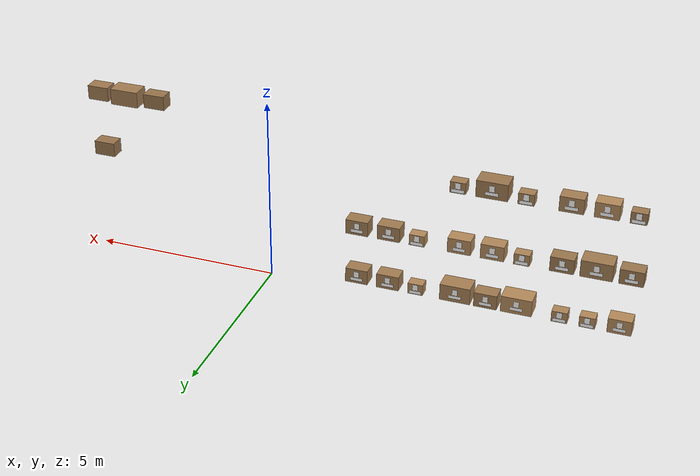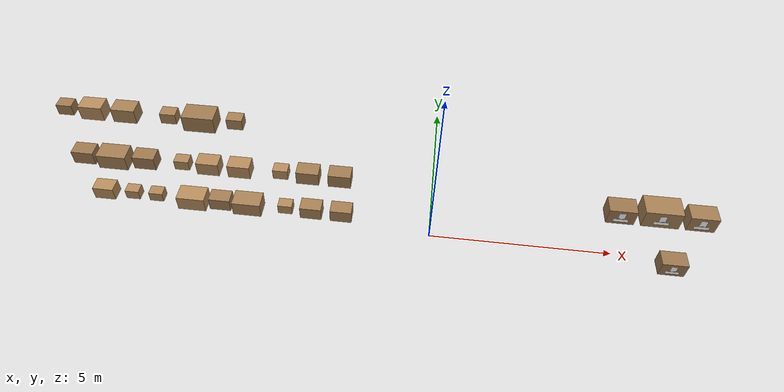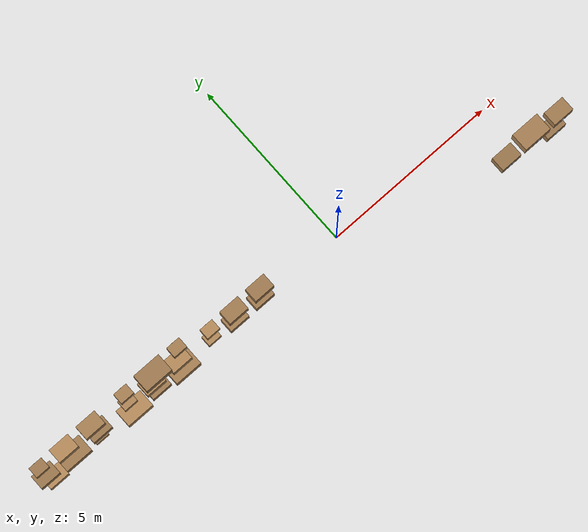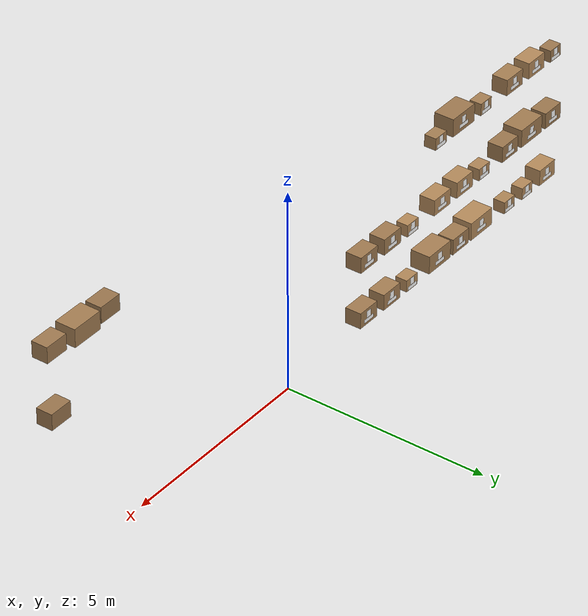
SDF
<sdf version="1.9">
 <world name="warehouse">
  <model name="inventory">
   <static>true</static>
   <link name="box_B_06_2_2">
    <visual name="body">
     <pose>5.65 -1.68 2.05 0 0 0</pose>
     <geometry><box><size>0.6 0.4 0.4</size></box></geometry>
     <material>
      <ambient>0.303546 0.232123 0.151773 1</ambient>
      <diffuse>0.607091 0.464246 0.303546 1</diffuse>
      <specular>0.05 0.05 0.05 1</specular>
      <pbr><metal><metalness>0.0</metalness><roughness>0.9</roughness></metal></pbr>
     </material>
    </visual>
    <collision name="body_c">
     <pose>5.65 -1.68 2.05 0 0 0</pose>
     <geometry><box><size>0.6 0.4 0.4</size></box></geometry>
    </collision>
    <visual name="label">
     <pose>5.65 -1.884 2.1 1.5708 0 0</pose>
     <geometry>
      <mesh><uri>model://warehouse_assets/meshes/label_quad.obj</uri><scale>0.14 0.17 1</scale></mesh>
     </geometry>
     <material>
      <ambient>1 1 1 1</ambient>
      <diffuse>1 1 1 1</diffuse>
      <specular>0 0 0 1</specular>
      <pbr>
       <metal>
        <albedo_map>model://warehouse_assets/materials/textures/box_B0622.png</albedo_map>
        <metalness>0.0</metalness>
        <roughness>1.0</roughness>
       </metal>
      </pbr>
     </material>
    </visual>
    <visual name="placard">
     <pose>5.65 -1.884 1.96 1.5708 0 0</pose>
     <geometry>
      <mesh><uri>model://warehouse_assets/meshes/label_quad.obj</uri><scale>0.32 0.09 1</scale></mesh>
     </geometry>
     <material>
      <ambient>1 1 1 1</ambient>
      <diffuse>1 1 1 1</diffuse>
      <specular>0 0 0 1</specular>
      <pbr>
       <metal>
        <albedo_map>model://warehouse_assets/materials/textures/placard_B0622.png</albedo_map>
        <metalness>0.0</metalness>
        <roughness>1.0</roughness>
       </metal>
      </pbr>
     </material>
    </visual>
   </link>
   <link name="box_B_06_3_0">
    <visual name="body">
     <pose>4 -1.68 3.75 0 0 0</pose>
     <geometry><box><size>0.6 0.4 0.4</size></box></geometry>
     <material>
      <ambient>0.302168 0.231069 0.151084 1</ambient>
      <diffuse>0.604336 0.462139 0.302168 1</diffuse>
      <specular>0.05 0.05 0.05 1</specular>
      <pbr><metal><metalness>0.0</metalness><roughness>0.9</roughness></metal></pbr>
     </material>
    </visual>
    <collision name="body_c">
     <pose>4 -1.68 3.75 0 0 0</pose>
     <geometry><box><size>0.6 0.4 0.4</size></box></geometry>
    </collision>
    <visual name="label">
     <pose>4 -1.884 3.8 1.5708 0 0</pose>
     <geometry>
      <mesh><uri>model://warehouse_assets/meshes/label_quad.obj</uri><scale>0.14 0.17 1</scale></mesh>
     </geometry>
     <material>
      <ambient>1 1 1 1</ambient>
      <diffuse>1 1 1 1</diffuse>
      <specular>0 0 0 1</specular>
      <pbr>
       <metal>
        <albedo_map>model://warehouse_assets/materials/textures/box_B0630.png</albedo_map>
        <metalness>0.0</metalness>
        <roughness>1.0</roughness>
       </metal>
      </pbr>
     </material>
    </visual>
    <visual name="placard">
     <pose>4 -1.884 3.66 1.5708 0 0</pose>
     <geometry>
      <mesh><uri>model://warehouse_assets/meshes/label_quad.obj</uri><scale>0.32 0.09 1</scale></mesh>
     </geometry>
     <material>
      <ambient>1 1 1 1</ambient>
      <diffuse>1 1 1 1</diffuse>
      <specular>0 0 0 1</specular>
      <pbr>
       <metal>
        <albedo_map>model://warehouse_assets/materials/textures/placard_B0630.png</albedo_map>
        <metalness>0.0</metalness>
        <roughness>1.0</roughness>
       </metal>
      </pbr>
     </material>
    </visual>
   </link>
   <link name="box_B_06_3_1">
    <visual name="body">
     <pose>4.85 -1.63 3.775 0 0 0</pose>
     <geometry><box><size>0.8 0.5 0.45</size></box></geometry>
     <material>
      <ambient>0.324613 0.248233 0.162306 1</ambient>
      <diffuse>0.649225 0.496466 0.324613 1</diffuse>
      <specular>0.05 0.05 0.05 1</specular>
      <pbr><metal><metalness>0.0</metalness><roughness>0.9</roughness></metal></pbr>
     </material>
    </visual>
    <collision name="body_c">
     <pose>4.85 -1.63 3.775 0 0 0</pose>
     <geometry><box><size>0.8 0.5 0.45</size></box></geometry>
    </collision>
    <visual name="label">
     <pose>4.85 -1.884 3.825 1.5708 0 0</pose>
     <geometry>
      <mesh><uri>model://warehouse_assets/meshes/label_quad.obj</uri><scale>0.14 0.17 1</scale></mesh>
     </geometry>
     <material>
      <ambient>1 1 1 1</ambient>
      <diffuse>1 1 1 1</diffuse>
      <specular>0 0 0 1</specular>
      <pbr>
       <metal>
        <albedo_map>model://warehouse_assets/materials/textures/box_B0631.png</albedo_map>
        <metalness>0.0</metalness>
        <roughness>1.0</roughness>
       </metal>
      </pbr>
     </material>
    </visual>
    <visual name="placard">
     <pose>4.85 -1.884 3.685 1.5708 0 0</pose>
     <geometry>
      <mesh><uri>model://warehouse_assets/meshes/label_quad.obj</uri><scale>0.32 0.09 1</scale></mesh>
     </geometry>
     <material>
      <ambient>1 1 1 1</ambient>
      <diffuse>1 1 1 1</diffuse>
      <specular>0 0 0 1</specular>
      <pbr>
       <metal>
        <albedo_map>model://warehouse_assets/materials/textures/placard_B0631.png</albedo_map>
        <metalness>0.0</metalness>
        <roughness>1.0</roughness>
       </metal>
      </pbr>
     </material>
    </visual>
   </link>
   <link name="box_B_06_3_2">
    <visual name="body">
     <pose>5.7 -1.68 3.75 0 0 0</pose>
     <geometry><box><size>0.6 0.4 0.4</size></box></geometry>
     <material>
      <ambient>0.315795 0.24149 0.157897 1</ambient>
      <diffuse>0.631589 0.48298 0.315795 1</diffuse>
      <specular>0.05 0.05 0.05 1</specular>
      <pbr><metal><metalness>0.0</metalness><roughness>0.9</roughness></metal></pbr>
     </material>
    </visual>
    <collision name="body_c">
     <pose>5.7 -1.68 3.75 0 0 0</pose>
     <geometry><box><size>0.6 0.4 0.4</size></box></geometry>
    </collision>
    <visual name="label">
     <pose>5.7 -1.884 3.8 1.5708 0 0</pose>
     <geometry>
      <mesh><uri>model://warehouse_assets/meshes/label_quad.obj</uri><scale>0.14 0.17 1</scale></mesh>
     </geometry>
     <material>
      <ambient>1 1 1 1</ambient>
      <diffuse>1 1 1 1</diffuse>
      <specular>0 0 0 1</specular>
      <pbr>
       <metal>
        <albedo_map>model://warehouse_assets/materials/textures/box_B0632.png</albedo_map>
        <metalness>0.0</metalness>
        <roughness>1.0</roughness>
       </metal>
      </pbr>
     </material>
    </visual>
    <visual name="placard">
     <pose>5.7 -1.884 3.66 1.5708 0 0</pose>
     <geometry>
      <mesh><uri>model://warehouse_assets/meshes/label_quad.obj</uri><scale>0.32 0.09 1</scale></mesh>
     </geometry>
     <material>
      <ambient>1 1 1 1</ambient>
      <diffuse>1 1 1 1</diffuse>
      <specular>0 0 0 1</specular>
      <pbr>
       <metal>
        <albedo_map>model://warehouse_assets/materials/textures/placard_B0632.png</albedo_map>
        <metalness>0.0</metalness>
        <roughness>1.0</roughness>
       </metal>
      </pbr>
     </material>
    </visual>
   </link>
   <link name="box_C_01_1_0">
    <visual name="body">
     <pose>-9.35 0.08 0.6 0 0 0</pose>
     <geometry><box><size>0.6 0.4 0.4</size></box></geometry>
     <material>
      <ambient>0.359424 0.274853 0.179712 1</ambient>
      <diffuse>0.718847 0.549707 0.359424 1</diffuse>
      <specular>0.05 0.05 0.05 1</specular>
      <pbr><metal><metalness>0.0</metalness><roughness>0.9</roughness></metal></pbr>
     </material>
    </visual>
    <collision name="body_c">
     <pose>-9.35 0.08 0.6 0 0 0</pose>
     <geometry><box><size>0.6 0.4 0.4</size></box></geometry>
    </collision>
    <visual name="label">
     <pose>-9.35 0.284 0.65 1.5708 0 3.14159</pose>
     <geometry>
      <mesh><uri>model://warehouse_assets/meshes/label_quad.obj</uri><scale>0.14 0.17 1</scale></mesh>
     </geometry>
     <material>
      <ambient>1 1 1 1</ambient>
      <diffuse>1 1 1 1</diffuse>
      <specular>0 0 0 1</specular>
      <pbr>
       <metal>
        <albedo_map>model://warehouse_assets/materials/textures/box_C0110.png</albedo_map>
        <metalness>0.0</metalness>
        <roughness>1.0</roughness>
       </metal>
      </pbr>
     </material>
    </visual>
    <visual name="placard">
     <pose>-9.35 0.284 0.51 1.5708 0 3.14159</pose>
     <geometry>
      <mesh><uri>model://warehouse_assets/meshes/label_quad.obj</uri><scale>0.32 0.09 1</scale></mesh>
     </geometry>
     <material>
      <ambient>1 1 1 1</ambient>
      <diffuse>1 1 1 1</diffuse>
      <specular>0 0 0 1</specular>
      <pbr>
       <metal>
        <albedo_map>model://warehouse_assets/materials/textures/placard_C0110.png</albedo_map>
        <metalness>0.0</metalness>
        <roughness>1.0</roughness>
       </metal>
      </pbr>
     </material>
    </visual>
   </link>
   <link name="box_C_01_1_1">
    <visual name="body">
     <pose>-8.55 0.13 0.55 0 0 0</pose>
     <geometry><box><size>0.4 0.3 0.3</size></box></geometry>
     <material>
      <ambient>0.354381 0.270998 0.177191 1</ambient>
      <diffuse>0.708763 0.541995 0.354381 1</diffuse>
      <specular>0.05 0.05 0.05 1</specular>
      <pbr><metal><metalness>0.0</metalness><roughness>0.9</roughness></metal></pbr>
     </material>
    </visual>
    <collision name="body_c">
     <pose>-8.55 0.13 0.55 0 0 0</pose>
     <geometry><box><size>0.4 0.3 0.3</size></box></geometry>
    </collision>
    <visual name="label">
     <pose>-8.55 0.284 0.6 1.5708 0 3.14159</pose>
     <geometry>
      <mesh><uri>model://warehouse_assets/meshes/label_quad.obj</uri><scale>0.14 0.17 1</scale></mesh>
     </geometry>
     <material>
      <ambient>1 1 1 1</ambient>
      <diffuse>1 1 1 1</diffuse>
      <specular>0 0 0 1</specular>
      <pbr>
       <metal>
        <albedo_map>model://warehouse_assets/materials/textures/box_C0111.png</albedo_map>
        <metalness>0.0</metalness>
        <roughness>1.0</roughness>
       </metal>
      </pbr>
     </material>
    </visual>
    <visual name="placard">
     <pose>-8.55 0.284 0.46 1.5708 0 3.14159</pose>
     <geometry>
      <mesh><uri>model://warehouse_assets/meshes/label_quad.obj</uri><scale>0.32 0.09 1</scale></mesh>
     </geometry>
     <material>
      <ambient>1 1 1 1</ambient>
      <diffuse>1 1 1 1</diffuse>
      <specular>0 0 0 1</specular>
      <pbr>
       <metal>
        <albedo_map>model://warehouse_assets/materials/textures/placard_C0111.png</albedo_map>
        <metalness>0.0</metalness>
        <roughness>1.0</roughness>
       </metal>
      </pbr>
     </material>
    </visual>
   </link>
   <link name="box_C_01_1_2">
    <visual name="body">
     <pose>-7.85 0.13 0.55 0 0 0</pose>
     <geometry><box><size>0.4 0.3 0.3</size></box></geometry>
     <material>
      <ambient>0.343346 0.262559 0.171673 1</ambient>
      <diffuse>0.686692 0.525117 0.343346 1</diffuse>
      <specular>0.05 0.05 0.05 1</specular>
      <pbr><metal><metalness>0.0</metalness><roughness>0.9</roughness></metal></pbr>
     </material>
    </visual>
    <collision name="body_c">
     <pose>-7.85 0.13 0.55 0 0 0</pose>
     <geometry><box><size>0.4 0.3 0.3</size></box></geometry>
    </collision>
    <visual name="label">
     <pose>-7.85 0.284 0.6 1.5708 0 3.14159</pose>
     <geometry>
      <mesh><uri>model://warehouse_assets/meshes/label_quad.obj</uri><scale>0.14 0.17 1</scale></mesh>
     </geometry>
     <material>
      <ambient>1 1 1 1</ambient>
      <diffuse>1 1 1 1</diffuse>
      <specular>0 0 0 1</specular>
      <pbr>
       <metal>
        <albedo_map>model://warehouse_assets/materials/textures/box_C0112.png</albedo_map>
        <metalness>0.0</metalness>
        <roughness>1.0</roughness>
       </metal>
      </pbr>
     </material>
    </visual>
    <visual name="placard">
     <pose>-7.85 0.284 0.46 1.5708 0 3.14159</pose>
     <geometry>
      <mesh><uri>model://warehouse_assets/meshes/label_quad.obj</uri><scale>0.32 0.09 1</scale></mesh>
     </geometry>
     <material>
      <ambient>1 1 1 1</ambient>
      <diffuse>1 1 1 1</diffuse>
      <specular>0 0 0 1</specular>
      <pbr>
       <metal>
        <albedo_map>model://warehouse_assets/materials/textures/placard_C0112.png</albedo_map>
        <metalness>0.0</metalness>
        <roughness>1.0</roughness>
       </metal>
      </pbr>
     </material>
    </visual>
   </link>
   <link name="box_C_01_2_0">
    <visual name="body">
     <pose>-9.5 0.08 2.05 0 0 0</pose>
     <geometry><box><size>0.6 0.4 0.4</size></box></geometry>
     <material>
      <ambient>0.30741 0.235078 0.153705 1</ambient>
      <diffuse>0.61482 0.470157 0.30741 1</diffuse>
      <specular>0.05 0.05 0.05 1</specular>
      <pbr><metal><metalness>0.0</metalness><roughness>0.9</roughness></metal></pbr>
     </material>
    </visual>
    <collision name="body_c">
     <pose>-9.5 0.08 2.05 0 0 0</pose>
     <geometry><box><size>0.6 0.4 0.4</size></box></geometry>
    </collision>
    <visual name="label">
     <pose>-9.5 0.284 2.1 1.5708 0 3.14159</pose>
     <geometry>
      <mesh><uri>model://warehouse_assets/meshes/label_quad.obj</uri><scale>0.14 0.17 1</scale></mesh>
     </geometry>
     <material>
      <ambient>1 1 1 1</ambient>
      <diffuse>1 1 1 1</diffuse>
      <specular>0 0 0 1</specular>
      <pbr>
       <metal>
        <albedo_map>model://warehouse_assets/materials/textures/box_C0120.png</albedo_map>
        <metalness>0.0</metalness>
        <roughness>1.0</roughness>
       </metal>
      </pbr>
     </material>
    </visual>
    <visual name="placard">
     <pose>-9.5 0.284 1.96 1.5708 0 3.14159</pose>
     <geometry>
      <mesh><uri>model://warehouse_assets/meshes/label_quad.obj</uri><scale>0.32 0.09 1</scale></mesh>
     </geometry>
     <material>
      <ambient>1 1 1 1</ambient>
      <diffuse>1 1 1 1</diffuse>
      <specular>0 0 0 1</specular>
      <pbr>
       <metal>
        <albedo_map>model://warehouse_assets/materials/textures/placard_C0120.png</albedo_map>
        <metalness>0.0</metalness>
        <roughness>1.0</roughness>
       </metal>
      </pbr>
     </material>
    </visual>
   </link>
   <link name="box_C_01_2_1">
    <visual name="body">
     <pose>-8.65 0.03 2.075 0 0 0</pose>
     <geometry><box><size>0.8 0.5 0.45</size></box></geometry>
     <material>
      <ambient>0.319136 0.244045 0.159568 1</ambient>
      <diffuse>0.638272 0.48809 0.319136 1</diffuse>
      <specular>0.05 0.05 0.05 1</specular>
      <pbr><metal><metalness>0.0</metalness><roughness>0.9</roughness></metal></pbr>
     </material>
    </visual>
    <collision name="body_c">
     <pose>-8.65 0.03 2.075 0 0 0</pose>
     <geometry><box><size>0.8 0.5 0.45</size></box></geometry>
    </collision>
    <visual name="label">
     <pose>-8.65 0.284 2.125 1.5708 0 3.14159</pose>
     <geometry>
      <mesh><uri>model://warehouse_assets/meshes/label_quad.obj</uri><scale>0.14 0.17 1</scale></mesh>
     </geometry>
     <material>
      <ambient>1 1 1 1</ambient>
      <diffuse>1 1 1 1</diffuse>
      <specular>0 0 0 1</specular>
      <pbr>
       <metal>
        <albedo_map>model://warehouse_assets/materials/textures/box_C0121.png</albedo_map>
        <metalness>0.0</metalness>
        <roughness>1.0</roughness>
       </metal>
      </pbr>
     </material>
    </visual>
    <visual name="placard">
     <pose>-8.65 0.284 1.985 1.5708 0 3.14159</pose>
     <geometry>
      <mesh><uri>model://warehouse_assets/meshes/label_quad.obj</uri><scale>0.32 0.09 1</scale></mesh>
     </geometry>
     <material>
      <ambient>1 1 1 1</ambient>
      <diffuse>1 1 1 1</diffuse>
      <specular>0 0 0 1</specular>
      <pbr>
       <metal>
        <albedo_map>model://warehouse_assets/materials/textures/placard_C0121.png</albedo_map>
        <metalness>0.0</metalness>
        <roughness>1.0</roughness>
       </metal>
      </pbr>
     </material>
    </visual>
   </link>
   <link name="box_C_01_2_2">
    <visual name="body">
     <pose>-7.8 0.08 2.05 0 0 0</pose>
     <geometry><box><size>0.6 0.4 0.4</size></box></geometry>
     <material>
      <ambient>0.30686 0.234657 0.15343 1</ambient>
      <diffuse>0.613719 0.469315 0.30686 1</diffuse>
      <specular>0.05 0.05 0.05 1</specular>
      <pbr><metal><metalness>0.0</metalness><roughness>0.9</roughness></metal></pbr>
     </material>
    </visual>
    <collision name="body_c">
     <pose>-7.8 0.08 2.05 0 0 0</pose>
     <geometry><box><size>0.6 0.4 0.4</size></box></geometry>
    </collision>
    <visual name="label">
     <pose>-7.8 0.284 2.1 1.5708 0 3.14159</pose>
     <geometry>
      <mesh><uri>model://warehouse_assets/meshes/label_quad.obj</uri><scale>0.14 0.17 1</scale></mesh>
     </geometry>
     <material>
      <ambient>1 1 1 1</ambient>
      <diffuse>1 1 1 1</diffuse>
      <specular>0 0 0 1</specular>
      <pbr>
       <metal>
        <albedo_map>model://warehouse_assets/materials/textures/box_C0122.png</albedo_map>
        <metalness>0.0</metalness>
        <roughness>1.0</roughness>
       </metal>
      </pbr>
     </material>
    </visual>
    <visual name="placard">
     <pose>-7.8 0.284 1.96 1.5708 0 3.14159</pose>
     <geometry>
      <mesh><uri>model://warehouse_assets/meshes/label_quad.obj</uri><scale>0.32 0.09 1</scale></mesh>
     </geometry>
     <material>
      <ambient>1 1 1 1</ambient>
      <diffuse>1 1 1 1</diffuse>
      <specular>0 0 0 1</specular>
      <pbr>
       <metal>
        <albedo_map>model://warehouse_assets/materials/textures/placard_C0122.png</albedo_map>
        <metalness>0.0</metalness>
        <roughness>1.0</roughness>
       </metal>
      </pbr>
     </material>
    </visual>
   </link>
   <link name="box_C_01_3_0">
    <visual name="body">
     <pose>-9.5 0.13 3.7 0 0 0</pose>
     <geometry><box><size>0.4 0.3 0.3</size></box></geometry>
     <material>
      <ambient>0.311797 0.238433 0.155898 1</ambient>
      <diffuse>0.623593 0.476865 0.311797 1</diffuse>
      <specular>0.05 0.05 0.05 1</specular>
      <pbr><metal><metalness>0.0</metalness><roughness>0.9</roughness></metal></pbr>
     </material>
    </visual>
    <collision name="body_c">
     <pose>-9.5 0.13 3.7 0 0 0</pose>
     <geometry><box><size>0.4 0.3 0.3</size></box></geometry>
    </collision>
    <visual name="label">
     <pose>-9.5 0.284 3.75 1.5708 0 3.14159</pose>
     <geometry>
      <mesh><uri>model://warehouse_assets/meshes/label_quad.obj</uri><scale>0.14 0.17 1</scale></mesh>
     </geometry>
     <material>
      <ambient>1 1 1 1</ambient>
      <diffuse>1 1 1 1</diffuse>
      <specular>0 0 0 1</specular>
      <pbr>
       <metal>
        <albedo_map>model://warehouse_assets/materials/textures/box_C0130.png</albedo_map>
        <metalness>0.0</metalness>
        <roughness>1.0</roughness>
       </metal>
      </pbr>
     </material>
    </visual>
    <visual name="placard">
     <pose>-9.5 0.284 3.61 1.5708 0 3.14159</pose>
     <geometry>
      <mesh><uri>model://warehouse_assets/meshes/label_quad.obj</uri><scale>0.32 0.09 1</scale></mesh>
     </geometry>
     <material>
      <ambient>1 1 1 1</ambient>
      <diffuse>1 1 1 1</diffuse>
      <specular>0 0 0 1</specular>
      <pbr>
       <metal>
        <albedo_map>model://warehouse_assets/materials/textures/placard_C0130.png</albedo_map>
        <metalness>0.0</metalness>
        <roughness>1.0</roughness>
       </metal>
      </pbr>
     </material>
    </visual>
   </link>
   <link name="box_C_01_3_1">
    <visual name="body">
     <pose>-8.75 0.08 3.75 0 0 0</pose>
     <geometry><box><size>0.6 0.4 0.4</size></box></geometry>
     <material>
      <ambient>0.357676 0.273517 0.178838 1</ambient>
      <diffuse>0.715353 0.547034 0.357676 1</diffuse>
      <specular>0.05 0.05 0.05 1</specular>
      <pbr><metal><metalness>0.0</metalness><roughness>0.9</roughness></metal></pbr>
     </material>
    </visual>
    <collision name="body_c">
     <pose>-8.75 0.08 3.75 0 0 0</pose>
     <geometry><box><size>0.6 0.4 0.4</size></box></geometry>
    </collision>
    <visual name="label">
     <pose>-8.75 0.284 3.8 1.5708 0 3.14159</pose>
     <geometry>
      <mesh><uri>model://warehouse_assets/meshes/label_quad.obj</uri><scale>0.14 0.17 1</scale></mesh>
     </geometry>
     <material>
      <ambient>1 1 1 1</ambient>
      <diffuse>1 1 1 1</diffuse>
      <specular>0 0 0 1</specular>
      <pbr>
       <metal>
        <albedo_map>model://warehouse_assets/materials/textures/box_C0131.png</albedo_map>
        <metalness>0.0</metalness>
        <roughness>1.0</roughness>
       </metal>
      </pbr>
     </material>
    </visual>
    <visual name="placard">
     <pose>-8.75 0.284 3.66 1.5708 0 3.14159</pose>
     <geometry>
      <mesh><uri>model://warehouse_assets/meshes/label_quad.obj</uri><scale>0.32 0.09 1</scale></mesh>
     </geometry>
     <material>
      <ambient>1 1 1 1</ambient>
      <diffuse>1 1 1 1</diffuse>
      <specular>0 0 0 1</specular>
      <pbr>
       <metal>
        <albedo_map>model://warehouse_assets/materials/textures/placard_C0131.png</albedo_map>
        <metalness>0.0</metalness>
        <roughness>1.0</roughness>
       </metal>
      </pbr>
     </material>
    </visual>
   </link>
   <link name="box_C_01_3_2">
    <visual name="body">
     <pose>-7.9 0.08 3.75 0 0 0</pose>
     <geometry><box><size>0.6 0.4 0.4</size></box></geometry>
     <material>
      <ambient>0.328376 0.251111 0.164188 1</ambient>
      <diffuse>0.656752 0.502222 0.328376 1</diffuse>
      <specular>0.05 0.05 0.05 1</specular>
      <pbr><metal><metalness>0.0</metalness><roughness>0.9</roughness></metal></pbr>
     </material>
    </visual>
    <collision name="body_c">
     <pose>-7.9 0.08 3.75 0 0 0</pose>
     <geometry><box><size>0.6 0.4 0.4</size></box></geometry>
    </collision>
    <visual name="label">
     <pose>-7.9 0.284 3.8 1.5708 0 3.14159</pose>
     <geometry>
      <mesh><uri>model://warehouse_assets/meshes/label_quad.obj</uri><scale>0.14 0.17 1</scale></mesh>
     </geometry>
     <material>
      <ambient>1 1 1 1</ambient>
      <diffuse>1 1 1 1</diffuse>
      <specular>0 0 0 1</specular>
      <pbr>
       <metal>
        <albedo_map>model://warehouse_assets/materials/textures/box_C0132.png</albedo_map>
        <metalness>0.0</metalness>
        <roughness>1.0</roughness>
       </metal>
      </pbr>
     </material>
    </visual>
    <visual name="placard">
     <pose>-7.9 0.284 3.66 1.5708 0 3.14159</pose>
     <geometry>
      <mesh><uri>model://warehouse_assets/meshes/label_quad.obj</uri><scale>0.32 0.09 1</scale></mesh>
     </geometry>
     <material>
      <ambient>1 1 1 1</ambient>
      <diffuse>1 1 1 1</diffuse>
      <specular>0 0 0 1</specular>
      <pbr>
       <metal>
        <albedo_map>model://warehouse_assets/materials/textures/placard_C0132.png</albedo_map>
        <metalness>0.0</metalness>
        <roughness>1.0</roughness>
       </metal>
      </pbr>
     </material>
    </visual>
   </link>
   <link name="box_C_02_1_0">
    <visual name="body">
     <pose>-6.75 0.03 0.625 0 0 0</pose>
     <geometry><box><size>0.8 0.5 0.45</size></box></geometry>
     <material>
      <ambient>0.359513 0.274922 0.179756 1</ambient>
      <diffuse>0.719025 0.549843 0.359513 1</diffuse>
      <specular>0.05 0.05 0.05 1</specular>
      <pbr><metal><metalness>0.0</metalness><roughness>0.9</roughness></metal></pbr>
     </material>
    </visual>
    <collision name="body_c">
     <pose>-6.75 0.03 0.625 0 0 0</pose>
     <geometry><box><size>0.8 0.5 0.45</size></box></geometry>
    </collision>
    <visual name="label">
     <pose>-6.75 0.284 0.675 1.5708 0 3.14159</pose>
     <geometry>
      <mesh><uri>model://warehouse_assets/meshes/label_quad.obj</uri><scale>0.14 0.17 1</scale></mesh>
     </geometry>
     <material>
      <ambient>1 1 1 1</ambient>
      <diffuse>1 1 1 1</diffuse>
      <specular>0 0 0 1</specular>
      <pbr>
       <metal>
        <albedo_map>model://warehouse_assets/materials/textures/box_C0210.png</albedo_map>
        <metalness>0.0</metalness>
        <roughness>1.0</roughness>
       </metal>
      </pbr>
     </material>
    </visual>
    <visual name="placard">
     <pose>-6.75 0.284 0.535 1.5708 0 3.14159</pose>
     <geometry>
      <mesh><uri>model://warehouse_assets/meshes/label_quad.obj</uri><scale>0.32 0.09 1</scale></mesh>
     </geometry>
     <material>
      <ambient>1 1 1 1</ambient>
      <diffuse>1 1 1 1</diffuse>
      <specular>0 0 0 1</specular>
      <pbr>
       <metal>
        <albedo_map>model://warehouse_assets/materials/textures/placard_C0210.png</albedo_map>
        <metalness>0.0</metalness>
        <roughness>1.0</roughness>
       </metal>
      </pbr>
     </material>
    </visual>
   </link>
   <link name="box_C_02_1_1">
    <visual name="body">
     <pose>-5.95 0.08 0.6 0 0 0</pose>
     <geometry><box><size>0.6 0.4 0.4</size></box></geometry>
     <material>
      <ambient>0.316304 0.241879 0.158152 1</ambient>
      <diffuse>0.632608 0.483759 0.316304 1</diffuse>
      <specular>0.05 0.05 0.05 1</specular>
      <pbr><metal><metalness>0.0</metalness><roughness>0.9</roughness></metal></pbr>
     </material>
    </visual>
    <collision name="body_c">
     <pose>-5.95 0.08 0.6 0 0 0</pose>
     <geometry><box><size>0.6 0.4 0.4</size></box></geometry>
    </collision>
    <visual name="label">
     <pose>-5.95 0.284 0.65 1.5708 0 3.14159</pose>
     <geometry>
      <mesh><uri>model://warehouse_assets/meshes/label_quad.obj</uri><scale>0.14 0.17 1</scale></mesh>
     </geometry>
     <material>
      <ambient>1 1 1 1</ambient>
      <diffuse>1 1 1 1</diffuse>
      <specular>0 0 0 1</specular>
      <pbr>
       <metal>
        <albedo_map>model://warehouse_assets/materials/textures/box_C0211.png</albedo_map>
        <metalness>0.0</metalness>
        <roughness>1.0</roughness>
       </metal>
      </pbr>
     </material>
    </visual>
    <visual name="placard">
     <pose>-5.95 0.284 0.51 1.5708 0 3.14159</pose>
     <geometry>
      <mesh><uri>model://warehouse_assets/meshes/label_quad.obj</uri><scale>0.32 0.09 1</scale></mesh>
     </geometry>
     <material>
      <ambient>1 1 1 1</ambient>
      <diffuse>1 1 1 1</diffuse>
      <specular>0 0 0 1</specular>
      <pbr>
       <metal>
        <albedo_map>model://warehouse_assets/materials/textures/placard_C0211.png</albedo_map>
        <metalness>0.0</metalness>
        <roughness>1.0</roughness>
       </metal>
      </pbr>
     </material>
    </visual>
   </link>
   <link name="box_C_02_1_2">
    <visual name="body">
     <pose>-5.15 0.03 0.625 0 0 0</pose>
     <geometry><box><size>0.8 0.5 0.45</size></box></geometry>
     <material>
      <ambient>0.330359 0.252628 0.16518 1</ambient>
      <diffuse>0.660718 0.505255 0.330359 1</diffuse>
      <specular>0.05 0.05 0.05 1</specular>
      <pbr><metal><metalness>0.0</metalness><roughness>0.9</roughness></metal></pbr>
     </material>
    </visual>
    <collision name="body_c">
     <pose>-5.15 0.03 0.625 0 0 0</pose>
     <geometry><box><size>0.8 0.5 0.45</size></box></geometry>
    </collision>
    <visual name="label">
     <pose>-5.15 0.284 0.675 1.5708 0 3.14159</pose>
     <geometry>
      <mesh><uri>model://warehouse_assets/meshes/label_quad.obj</uri><scale>0.14 0.17 1</scale></mesh>
     </geometry>
     <material>
      <ambient>1 1 1 1</ambient>
      <diffuse>1 1 1 1</diffuse>
      <specular>0 0 0 1</specular>
      <pbr>
       <metal>
        <albedo_map>model://warehouse_assets/materials/textures/box_C0212.png</albedo_map>
        <metalness>0.0</metalness>
        <roughness>1.0</roughness>
       </metal>
      </pbr>
     </material>
    </visual>
    <visual name="placard">
     <pose>-5.15 0.284 0.535 1.5708 0 3.14159</pose>
     <geometry>
      <mesh><uri>model://warehouse_assets/meshes/label_quad.obj</uri><scale>0.32 0.09 1</scale></mesh>
     </geometry>
     <material>
      <ambient>1 1 1 1</ambient>
      <diffuse>1 1 1 1</diffuse>
      <specular>0 0 0 1</specular>
      <pbr>
       <metal>
        <albedo_map>model://warehouse_assets/materials/textures/placard_C0212.png</albedo_map>
        <metalness>0.0</metalness>
        <roughness>1.0</roughness>
       </metal>
      </pbr>
     </material>
    </visual>
   </link>
   <link name="box_C_02_2_0">
    <visual name="body">
     <pose>-6.8 0.13 2 0 0 0</pose>
     <geometry><box><size>0.4 0.3 0.3</size></box></geometry>
     <material>
      <ambient>0.34559 0.264274 0.172795 1</ambient>
      <diffuse>0.691179 0.528549 0.34559 1</diffuse>
      <specular>0.05 0.05 0.05 1</specular>
      <pbr><metal><metalness>0.0</metalness><roughness>0.9</roughness></metal></pbr>
     </material>
    </visual>
    <collision name="body_c">
     <pose>-6.8 0.13 2 0 0 0</pose>
     <geometry><box><size>0.4 0.3 0.3</size></box></geometry>
    </collision>
    <visual name="label">
     <pose>-6.8 0.284 2.05 1.5708 0 3.14159</pose>
     <geometry>
      <mesh><uri>model://warehouse_assets/meshes/label_quad.obj</uri><scale>0.14 0.17 1</scale></mesh>
     </geometry>
     <material>
      <ambient>1 1 1 1</ambient>
      <diffuse>1 1 1 1</diffuse>
      <specular>0 0 0 1</specular>
      <pbr>
       <metal>
        <albedo_map>model://warehouse_assets/materials/textures/box_C0220.png</albedo_map>
        <metalness>0.0</metalness>
        <roughness>1.0</roughness>
       </metal>
      </pbr>
     </material>
    </visual>
    <visual name="placard">
     <pose>-6.8 0.284 1.91 1.5708 0 3.14159</pose>
     <geometry>
      <mesh><uri>model://warehouse_assets/meshes/label_quad.obj</uri><scale>0.32 0.09 1</scale></mesh>
     </geometry>
     <material>
      <ambient>1 1 1 1</ambient>
      <diffuse>1 1 1 1</diffuse>
      <specular>0 0 0 1</specular>
      <pbr>
       <metal>
        <albedo_map>model://warehouse_assets/materials/textures/placard_C0220.png</albedo_map>
        <metalness>0.0</metalness>
        <roughness>1.0</roughness>
       </metal>
      </pbr>
     </material>
    </visual>
   </link>
   <link name="box_C_02_2_1">
    <visual name="body">
     <pose>-6.05 0.08 2.05 0 0 0</pose>
     <geometry><box><size>0.6 0.4 0.4</size></box></geometry>
     <material>
      <ambient>0.352853 0.269829 0.176427 1</ambient>
      <diffuse>0.705707 0.539658 0.352853 1</diffuse>
      <specular>0.05 0.05 0.05 1</specular>
      <pbr><metal><metalness>0.0</metalness><roughness>0.9</roughness></metal></pbr>
     </material>
    </visual>
    <collision name="body_c">
     <pose>-6.05 0.08 2.05 0 0 0</pose>
     <geometry><box><size>0.6 0.4 0.4</size></box></geometry>
    </collision>
    <visual name="label">
     <pose>-6.05 0.284 2.1 1.5708 0 3.14159</pose>
     <geometry>
      <mesh><uri>model://warehouse_assets/meshes/label_quad.obj</uri><scale>0.14 0.17 1</scale></mesh>
     </geometry>
     <material>
      <ambient>1 1 1 1</ambient>
      <diffuse>1 1 1 1</diffuse>
      <specular>0 0 0 1</specular>
      <pbr>
       <metal>
        <albedo_map>model://warehouse_assets/materials/textures/box_C0221.png</albedo_map>
        <metalness>0.0</metalness>
        <roughness>1.0</roughness>
       </metal>
      </pbr>
     </material>
    </visual>
    <visual name="placard">
     <pose>-6.05 0.284 1.96 1.5708 0 3.14159</pose>
     <geometry>
      <mesh><uri>model://warehouse_assets/meshes/label_quad.obj</uri><scale>0.32 0.09 1</scale></mesh>
     </geometry>
     <material>
      <ambient>1 1 1 1</ambient>
      <diffuse>1 1 1 1</diffuse>
      <specular>0 0 0 1</specular>
      <pbr>
       <metal>
        <albedo_map>model://warehouse_assets/materials/textures/placard_C0221.png</albedo_map>
        <metalness>0.0</metalness>
        <roughness>1.0</roughness>
       </metal>
      </pbr>
     </material>
    </visual>
   </link>
   <link name="box_C_02_2_2">
    <visual name="body">
     <pose>-5.2 0.08 2.05 0 0 0</pose>
     <geometry><box><size>0.6 0.4 0.4</size></box></geometry>
     <material>
      <ambient>0.357023 0.273018 0.178511 1</ambient>
      <diffuse>0.714046 0.546035 0.357023 1</diffuse>
      <specular>0.05 0.05 0.05 1</specular>
      <pbr><metal><metalness>0.0</metalness><roughness>0.9</roughness></metal></pbr>
     </material>
    </visual>
    <collision name="body_c">
     <pose>-5.2 0.08 2.05 0 0 0</pose>
     <geometry><box><size>0.6 0.4 0.4</size></box></geometry>
    </collision>
    <visual name="label">
     <pose>-5.2 0.284 2.1 1.5708 0 3.14159</pose>
     <geometry>
      <mesh><uri>model://warehouse_assets/meshes/label_quad.obj</uri><scale>0.14 0.17 1</scale></mesh>
     </geometry>
     <material>
      <ambient>1 1 1 1</ambient>
      <diffuse>1 1 1 1</diffuse>
      <specular>0 0 0 1</specular>
      <pbr>
       <metal>
        <albedo_map>model://warehouse_assets/materials/textures/box_C0222.png</albedo_map>
        <metalness>0.0</metalness>
        <roughness>1.0</roughness>
       </metal>
      </pbr>
     </material>
    </visual>
    <visual name="placard">
     <pose>-5.2 0.284 1.96 1.5708 0 3.14159</pose>
     <geometry>
      <mesh><uri>model://warehouse_assets/meshes/label_quad.obj</uri><scale>0.32 0.09 1</scale></mesh>
     </geometry>
     <material>
      <ambient>1 1 1 1</ambient>
      <diffuse>1 1 1 1</diffuse>
      <specular>0 0 0 1</specular>
      <pbr>
       <metal>
        <albedo_map>model://warehouse_assets/materials/textures/placard_C0222.png</albedo_map>
        <metalness>0.0</metalness>
        <roughness>1.0</roughness>
       </metal>
      </pbr>
     </material>
    </visual>
   </link>
   <link name="box_C_02_3_0">
    <visual name="body">
     <pose>-6.8 0.13 3.7 0 0 0</pose>
     <geometry><box><size>0.4 0.3 0.3</size></box></geometry>
     <material>
      <ambient>0.329751 0.252163 0.164876 1</ambient>
      <diffuse>0.659502 0.504325 0.329751 1</diffuse>
      <specular>0.05 0.05 0.05 1</specular>
      <pbr><metal><metalness>0.0</metalness><roughness>0.9</roughness></metal></pbr>
     </material>
    </visual>
    <collision name="body_c">
     <pose>-6.8 0.13 3.7 0 0 0</pose>
     <geometry><box><size>0.4 0.3 0.3</size></box></geometry>
    </collision>
    <visual name="label">
     <pose>-6.8 0.284 3.75 1.5708 0 3.14159</pose>
     <geometry>
      <mesh><uri>model://warehouse_assets/meshes/label_quad.obj</uri><scale>0.14 0.17 1</scale></mesh>
     </geometry>
     <material>
      <ambient>1 1 1 1</ambient>
      <diffuse>1 1 1 1</diffuse>
      <specular>0 0 0 1</specular>
      <pbr>
       <metal>
        <albedo_map>model://warehouse_assets/materials/textures/box_C0230.png</albedo_map>
        <metalness>0.0</metalness>
        <roughness>1.0</roughness>
       </metal>
      </pbr>
     </material>
    </visual>
    <visual name="placard">
     <pose>-6.8 0.284 3.61 1.5708 0 3.14159</pose>
     <geometry>
      <mesh><uri>model://warehouse_assets/meshes/label_quad.obj</uri><scale>0.32 0.09 1</scale></mesh>
     </geometry>
     <material>
      <ambient>1 1 1 1</ambient>
      <diffuse>1 1 1 1</diffuse>
      <specular>0 0 0 1</specular>
      <pbr>
       <metal>
        <albedo_map>model://warehouse_assets/materials/textures/placard_C0230.png</albedo_map>
        <metalness>0.0</metalness>
        <roughness>1.0</roughness>
       </metal>
      </pbr>
     </material>
    </visual>
   </link>
   <link name="box_C_02_3_1">
    <visual name="body">
     <pose>-5.95 0.03 3.775 0 0 0</pose>
     <geometry><box><size>0.8 0.5 0.45</size></box></geometry>
     <material>
      <ambient>0.312637 0.239075 0.156318 1</ambient>
      <diffuse>0.625273 0.47815 0.312637 1</diffuse>
      <specular>0.05 0.05 0.05 1</specular>
      <pbr><metal><metalness>0.0</metalness><roughness>0.9</roughness></metal></pbr>
     </material>
    </visual>
    <collision name="body_c">
     <pose>-5.95 0.03 3.775 0 0 0</pose>
     <geometry><box><size>0.8 0.5 0.45</size></box></geometry>
    </collision>
    <visual name="label">
     <pose>-5.95 0.284 3.825 1.5708 0 3.14159</pose>
     <geometry>
      <mesh><uri>model://warehouse_assets/meshes/label_quad.obj</uri><scale>0.14 0.17 1</scale></mesh>
     </geometry>
     <material>
      <ambient>1 1 1 1</ambient>
      <diffuse>1 1 1 1</diffuse>
      <specular>0 0 0 1</specular>
      <pbr>
       <metal>
        <albedo_map>model://warehouse_assets/materials/textures/box_C0231.png</albedo_map>
        <metalness>0.0</metalness>
        <roughness>1.0</roughness>
       </metal>
      </pbr>
     </material>
    </visual>
    <visual name="placard">
     <pose>-5.95 0.284 3.685 1.5708 0 3.14159</pose>
     <geometry>
      <mesh><uri>model://warehouse_assets/meshes/label_quad.obj</uri><scale>0.32 0.09 1</scale></mesh>
     </geometry>
     <material>
      <ambient>1 1 1 1</ambient>
      <diffuse>1 1 1 1</diffuse>
      <specular>0 0 0 1</specular>
      <pbr>
       <metal>
        <albedo_map>model://warehouse_assets/materials/textures/placard_C0231.png</albedo_map>
        <metalness>0.0</metalness>
        <roughness>1.0</roughness>
       </metal>
      </pbr>
     </material>
    </visual>
   </link>
   <link name="box_C_02_3_2">
    <visual name="body">
     <pose>-5.1 0.13 3.7 0 0 0</pose>
     <geometry><box><size>0.4 0.3 0.3</size></box></geometry>
     <material>
      <ambient>0.324982 0.248516 0.162491 1</ambient>
      <diffuse>0.649964 0.497031 0.324982 1</diffuse>
      <specular>0.05 0.05 0.05 1</specular>
      <pbr><metal><metalness>0.0</metalness><roughness>0.9</roughness></metal></pbr>
     </material>
    </visual>
    <collision name="body_c">
     <pose>-5.1 0.13 3.7 0 0 0</pose>
     <geometry><box><size>0.4 0.3 0.3</size></box></geometry>
    </collision>
    <visual name="label">
     <pose>-5.1 0.284 3.75 1.5708 0 3.14159</pose>
     <geometry>
      <mesh><uri>model://warehouse_assets/meshes/label_quad.obj</uri><scale>0.14 0.17 1</scale></mesh>
     </geometry>
     <material>
      <ambient>1 1 1 1</ambient>
      <diffuse>1 1 1 1</diffuse>
      <specular>0 0 0 1</specular>
      <pbr>
       <metal>
        <albedo_map>model://warehouse_assets/materials/textures/box_C0232.png</albedo_map>
        <metalness>0.0</metalness>
        <roughness>1.0</roughness>
       </metal>
      </pbr>
     </material>
    </visual>
    <visual name="placard">
     <pose>-5.1 0.284 3.61 1.5708 0 3.14159</pose>
     <geometry>
      <mesh><uri>model://warehouse_assets/meshes/label_quad.obj</uri><scale>0.32 0.09 1</scale></mesh>
     </geometry>
     <material>
      <ambient>1 1 1 1</ambient>
      <diffuse>1 1 1 1</diffuse>
      <specular>0 0 0 1</specular>
      <pbr>
       <metal>
        <albedo_map>model://warehouse_assets/materials/textures/placard_C0232.png</albedo_map>
        <metalness>0.0</metalness>
        <roughness>1.0</roughness>
       </metal>
      </pbr>
     </material>
    </visual>
   </link>
   <link name="box_C_03_1_0">
    <visual name="body">
     <pose>-4.1 0.13 0.55 0 0 0</pose>
     <geometry><box><size>0.4 0.3 0.3</size></box></geometry>
     <material>
      <ambient>0.350588 0.268097 0.175294 1</ambient>
      <diffuse>0.701177 0.536194 0.350588 1</diffuse>
      <specular>0.05 0.05 0.05 1</specular>
      <pbr><metal><metalness>0.0</metalness><roughness>0.9</roughness></metal></pbr>
     </material>
    </visual>
    <collision name="body_c">
     <pose>-4.1 0.13 0.55 0 0 0</pose>
     <geometry><box><size>0.4 0.3 0.3</size></box></geometry>
    </collision>
    <visual name="label">
     <pose>-4.1 0.284 0.6 1.5708 0 3.14159</pose>
     <geometry>
      <mesh><uri>model://warehouse_assets/meshes/label_quad.obj</uri><scale>0.14 0.17 1</scale></mesh>
     </geometry>
     <material>
      <ambient>1 1 1 1</ambient>
      <diffuse>1 1 1 1</diffuse>
      <specular>0 0 0 1</specular>
      <pbr>
       <metal>
        <albedo_map>model://warehouse_assets/materials/textures/box_C0310.png</albedo_map>
        <metalness>0.0</metalness>
        <roughness>1.0</roughness>
       </metal>
      </pbr>
     </material>
    </visual>
    <visual name="placard">
     <pose>-4.1 0.284 0.46 1.5708 0 3.14159</pose>
     <geometry>
      <mesh><uri>model://warehouse_assets/meshes/label_quad.obj</uri><scale>0.32 0.09 1</scale></mesh>
     </geometry>
     <material>
      <ambient>1 1 1 1</ambient>
      <diffuse>1 1 1 1</diffuse>
      <specular>0 0 0 1</specular>
      <pbr>
       <metal>
        <albedo_map>model://warehouse_assets/materials/textures/placard_C0310.png</albedo_map>
        <metalness>0.0</metalness>
        <roughness>1.0</roughness>
       </metal>
      </pbr>
     </material>
    </visual>
   </link>
   <link name="box_C_03_1_1">
    <visual name="body">
     <pose>-3.35 0.08 0.6 0 0 0</pose>
     <geometry><box><size>0.6 0.4 0.4</size></box></geometry>
     <material>
      <ambient>0.325363 0.248807 0.162682 1</ambient>
      <diffuse>0.650727 0.497615 0.325363 1</diffuse>
      <specular>0.05 0.05 0.05 1</specular>
      <pbr><metal><metalness>0.0</metalness><roughness>0.9</roughness></metal></pbr>
     </material>
    </visual>
    <collision name="body_c">
     <pose>-3.35 0.08 0.6 0 0 0</pose>
     <geometry><box><size>0.6 0.4 0.4</size></box></geometry>
    </collision>
    <visual name="label">
     <pose>-3.35 0.284 0.65 1.5708 0 3.14159</pose>
     <geometry>
      <mesh><uri>model://warehouse_assets/meshes/label_quad.obj</uri><scale>0.14 0.17 1</scale></mesh>
     </geometry>
     <material>
      <ambient>1 1 1 1</ambient>
      <diffuse>1 1 1 1</diffuse>
      <specular>0 0 0 1</specular>
      <pbr>
       <metal>
        <albedo_map>model://warehouse_assets/materials/textures/box_C0311.png</albedo_map>
        <metalness>0.0</metalness>
        <roughness>1.0</roughness>
       </metal>
      </pbr>
     </material>
    </visual>
    <visual name="placard">
     <pose>-3.35 0.284 0.51 1.5708 0 3.14159</pose>
     <geometry>
      <mesh><uri>model://warehouse_assets/meshes/label_quad.obj</uri><scale>0.32 0.09 1</scale></mesh>
     </geometry>
     <material>
      <ambient>1 1 1 1</ambient>
      <diffuse>1 1 1 1</diffuse>
      <specular>0 0 0 1</specular>
      <pbr>
       <metal>
        <albedo_map>model://warehouse_assets/materials/textures/placard_C0311.png</albedo_map>
        <metalness>0.0</metalness>
        <roughness>1.0</roughness>
       </metal>
      </pbr>
     </material>
    </visual>
   </link>
   <link name="box_C_03_1_2">
    <visual name="body">
     <pose>-2.5 0.08 0.6 0 0 0</pose>
     <geometry><box><size>0.6 0.4 0.4</size></box></geometry>
     <material>
      <ambient>0.318804 0.243791 0.159402 1</ambient>
      <diffuse>0.637608 0.487582 0.318804 1</diffuse>
      <specular>0.05 0.05 0.05 1</specular>
      <pbr><metal><metalness>0.0</metalness><roughness>0.9</roughness></metal></pbr>
     </material>
    </visual>
    <collision name="body_c">
     <pose>-2.5 0.08 0.6 0 0 0</pose>
     <geometry><box><size>0.6 0.4 0.4</size></box></geometry>
    </collision>
    <visual name="label">
     <pose>-2.5 0.284 0.65 1.5708 0 3.14159</pose>
     <geometry>
      <mesh><uri>model://warehouse_assets/meshes/label_quad.obj</uri><scale>0.14 0.17 1</scale></mesh>
     </geometry>
     <material>
      <ambient>1 1 1 1</ambient>
      <diffuse>1 1 1 1</diffuse>
      <specular>0 0 0 1</specular>
      <pbr>
       <metal>
        <albedo_map>model://warehouse_assets/materials/textures/box_C0312.png</albedo_map>
        <metalness>0.0</metalness>
        <roughness>1.0</roughness>
       </metal>
      </pbr>
     </material>
    </visual>
    <visual name="placard">
     <pose>-2.5 0.284 0.51 1.5708 0 3.14159</pose>
     <geometry>
      <mesh><uri>model://warehouse_assets/meshes/label_quad.obj</uri><scale>0.32 0.09 1</scale></mesh>
     </geometry>
     <material>
      <ambient>1 1 1 1</ambient>
      <diffuse>1 1 1 1</diffuse>
      <specular>0 0 0 1</specular>
      <pbr>
       <metal>
        <albedo_map>model://warehouse_assets/materials/textures/placard_C0312.png</albedo_map>
        <metalness>0.0</metalness>
        <roughness>1.0</roughness>
       </metal>
      </pbr>
     </material>
    </visual>
   </link>
   <link name="box_C_03_2_0">
    <visual name="body">
     <pose>-4.1 0.13 2 0 0 0</pose>
     <geometry><box><size>0.4 0.3 0.3</size></box></geometry>
     <material>
      <ambient>0.356992 0.272994 0.178496 1</ambient>
      <diffuse>0.713985 0.545988 0.356992 1</diffuse>
      <specular>0.05 0.05 0.05 1</specular>
      <pbr><metal><metalness>0.0</metalness><roughness>0.9</roughness></metal></pbr>
     </material>
    </visual>
    <collision name="body_c">
     <pose>-4.1 0.13 2 0 0 0</pose>
     <geometry><box><size>0.4 0.3 0.3</size></box></geometry>
    </collision>
    <visual name="label">
     <pose>-4.1 0.284 2.05 1.5708 0 3.14159</pose>
     <geometry>
      <mesh><uri>model://warehouse_assets/meshes/label_quad.obj</uri><scale>0.14 0.17 1</scale></mesh>
     </geometry>
     <material>
      <ambient>1 1 1 1</ambient>
      <diffuse>1 1 1 1</diffuse>
      <specular>0 0 0 1</specular>
      <pbr>
       <metal>
        <albedo_map>model://warehouse_assets/materials/textures/box_C0320.png</albedo_map>
        <metalness>0.0</metalness>
        <roughness>1.0</roughness>
       </metal>
      </pbr>
     </material>
    </visual>
    <visual name="placard">
     <pose>-4.1 0.284 1.91 1.5708 0 3.14159</pose>
     <geometry>
      <mesh><uri>model://warehouse_assets/meshes/label_quad.obj</uri><scale>0.32 0.09 1</scale></mesh>
     </geometry>
     <material>
      <ambient>1 1 1 1</ambient>
      <diffuse>1 1 1 1</diffuse>
      <specular>0 0 0 1</specular>
      <pbr>
       <metal>
        <albedo_map>model://warehouse_assets/materials/textures/placard_C0320.png</albedo_map>
        <metalness>0.0</metalness>
        <roughness>1.0</roughness>
       </metal>
      </pbr>
     </material>
    </visual>
   </link>
   <link name="box_C_03_2_1">
    <visual name="body">
     <pose>-3.35 0.08 2.05 0 0 0</pose>
     <geometry><box><size>0.6 0.4 0.4</size></box></geometry>
     <material>
      <ambient>0.318553 0.2436 0.159277 1</ambient>
      <diffuse>0.637106 0.487199 0.318553 1</diffuse>
      <specular>0.05 0.05 0.05 1</specular>
      <pbr><metal><metalness>0.0</metalness><roughness>0.9</roughness></metal></pbr>
     </material>
    </visual>
    <collision name="body_c">
     <pose>-3.35 0.08 2.05 0 0 0</pose>
     <geometry><box><size>0.6 0.4 0.4</size></box></geometry>
    </collision>
    <visual name="label">
     <pose>-3.35 0.284 2.1 1.5708 0 3.14159</pose>
     <geometry>
      <mesh><uri>model://warehouse_assets/meshes/label_quad.obj</uri><scale>0.14 0.17 1</scale></mesh>
     </geometry>
     <material>
      <ambient>1 1 1 1</ambient>
      <diffuse>1 1 1 1</diffuse>
      <specular>0 0 0 1</specular>
      <pbr>
       <metal>
        <albedo_map>model://warehouse_assets/materials/textures/box_C0321.png</albedo_map>
        <metalness>0.0</metalness>
        <roughness>1.0</roughness>
       </metal>
      </pbr>
     </material>
    </visual>
    <visual name="placard">
     <pose>-3.35 0.284 1.96 1.5708 0 3.14159</pose>
     <geometry>
      <mesh><uri>model://warehouse_assets/meshes/label_quad.obj</uri><scale>0.32 0.09 1</scale></mesh>
     </geometry>
     <material>
      <ambient>1 1 1 1</ambient>
      <diffuse>1 1 1 1</diffuse>
      <specular>0 0 0 1</specular>
      <pbr>
       <metal>
        <albedo_map>model://warehouse_assets/materials/textures/placard_C0321.png</albedo_map>
        <metalness>0.0</metalness>
        <roughness>1.0</roughness>
       </metal>
      </pbr>
     </material>
    </visual>
   </link>
   <link name="box_C_03_2_2">
    <visual name="body">
     <pose>-2.5 0.08 2.05 0 0 0</pose>
     <geometry><box><size>0.6 0.4 0.4</size></box></geometry>
     <material>
      <ambient>0.31422 0.240286 0.15711 1</ambient>
      <diffuse>0.62844 0.480572 0.31422 1</diffuse>
      <specular>0.05 0.05 0.05 1</specular>
      <pbr><metal><metalness>0.0</metalness><roughness>0.9</roughness></metal></pbr>
     </material>
    </visual>
    <collision name="body_c">
     <pose>-2.5 0.08 2.05 0 0 0</pose>
     <geometry><box><size>0.6 0.4 0.4</size></box></geometry>
    </collision>
    <visual name="label">
     <pose>-2.5 0.284 2.1 1.5708 0 3.14159</pose>
     <geometry>
      <mesh><uri>model://warehouse_assets/meshes/label_quad.obj</uri><scale>0.14 0.17 1</scale></mesh>
     </geometry>
     <material>
      <ambient>1 1 1 1</ambient>
      <diffuse>1 1 1 1</diffuse>
      <specular>0 0 0 1</specular>
      <pbr>
       <metal>
        <albedo_map>model://warehouse_assets/materials/textures/box_C0322.png</albedo_map>
        <metalness>0.0</metalness>
        <roughness>1.0</roughness>
       </metal>
      </pbr>
     </material>
    </visual>
    <visual name="placard">
     <pose>-2.5 0.284 1.96 1.5708 0 3.14159</pose>
     <geometry>
      <mesh><uri>model://warehouse_assets/meshes/label_quad.obj</uri><scale>0.32 0.09 1</scale></mesh>
     </geometry>
     <material>
      <ambient>1 1 1 1</ambient>
      <diffuse>1 1 1 1</diffuse>
      <specular>0 0 0 1</specular>
      <pbr>
       <metal>
        <albedo_map>model://warehouse_assets/materials/textures/placard_C0322.png</albedo_map>
        <metalness>0.0</metalness>
        <roughness>1.0</roughness>
       </metal>
      </pbr>
     </material>
    </visual>
   </link>
  </model>
 </world>
</sdf>
